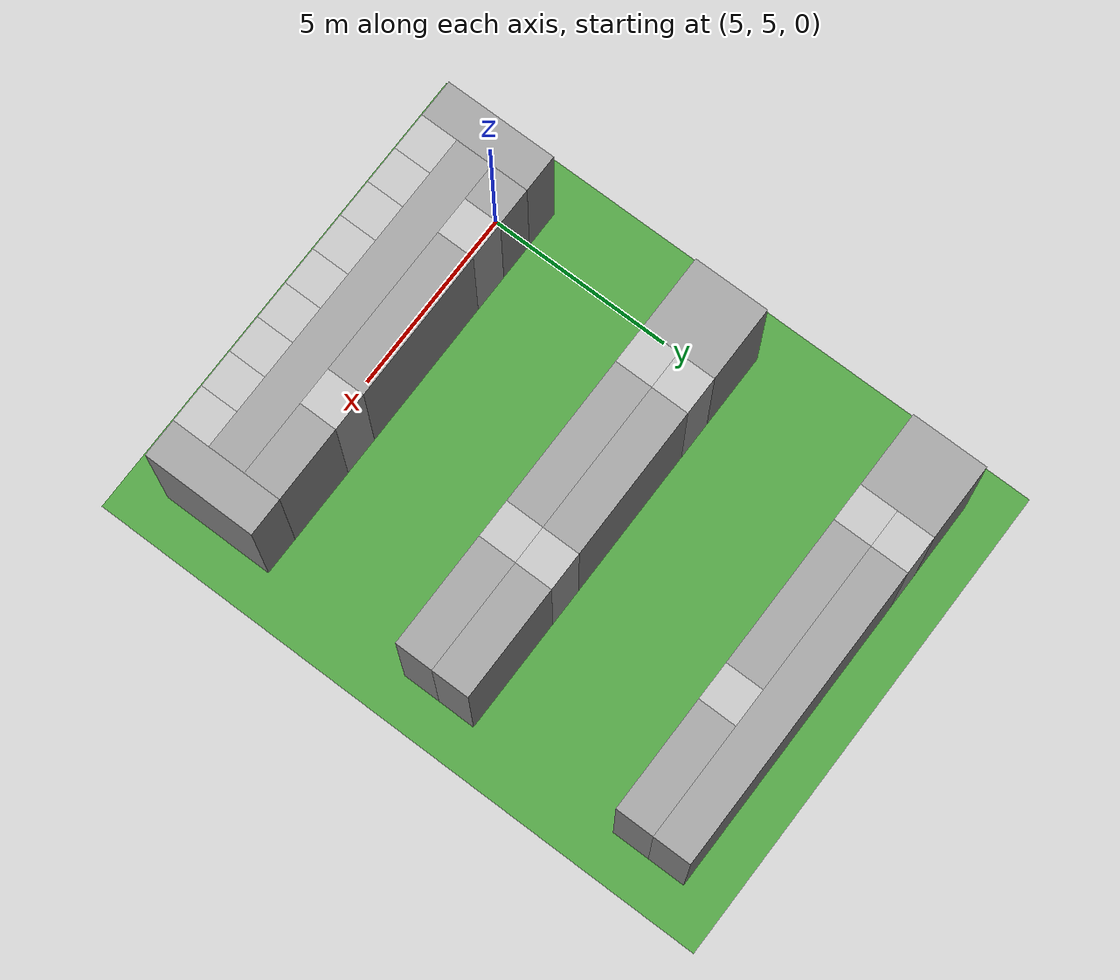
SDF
<sdf version="1.6">
 <world name="default">
  <light name="sun" type="directional">
   <pose>0 0 10 0 -0 0</pose>
   <diffuse>0.8 0.8 0.8 1</diffuse>
   <specular>0.1 0.1 0.1 1</specular>
   <attenuation>
    <range>1000</range>
    <constant>0.9</constant>
    <linear>0.01</linear>
    <quadratic>0.001</quadratic>
   </attenuation>
   <direction>-0.5 0.5 -1</direction>
  </light>
  <model name="ground_plane">
   <static>1</static>
   <link name="link">
    <collision name="collision">
     <geometry><plane><normal>0 0 1</normal><size>100 100</size></plane></geometry>
     <surface><friction><ode><mu>100</mu><mu2>50</mu2></ode></friction></surface>
    </collision>
    <visual name="visual">
     <cast_shadows>0</cast_shadows>
     <geometry><plane><normal>0 0 1</normal><size>100 100</size></plane></geometry>
     <material>
      <script><uri>file://media/materials/scripts/gazebo.material</uri><name>Gazebo/Grass</name></script>
     </material>
    </visual>
   </link>
  </model>
  <gravity>0 0 -9.8</gravity>
  <magnetic_field>6e-06 2.3e-05 -4.2e-05</magnetic_field>
  <atmosphere type="adiabatic"/>
  <physics name="default_physics" default="0" type="ode">
   <max_step_size>0.001</max_step_size>
   <real_time_factor>1</real_time_factor>
   <real_time_update_rate>1000</real_time_update_rate>
  </physics>
  <scene><ambient>0.4 0.4 0.4 1</ambient><background>0.7 0.7 0.7 1</background><shadows>1</shadows></scene>
  <spherical_coordinates>
   <surface_model>EARTH_WGS84</surface_model>
   <latitude_deg>0</latitude_deg>
   <longitude_deg>0</longitude_deg>
   <elevation>0</elevation>
   <heading_deg>0</heading_deg>
  </spherical_coordinates>
  <model name="wall">
   <pose>4.500000 4.500000 2 0 0 0</pose>
   <static>1</static>
   <link name="wall-link">
    <collision name="collision"><geometry><box><size>1 3 4</size></box></geometry></collision>
    <visual name="visual">
     <geometry><box><size>1 3 4</size></box></geometry>
     <material>
      <script><name>Gazebo/Grey</name><uri>file://media/materials/scripts/gazebo.material</uri></script>
     </material>
    </visual>
    <gravity>0</gravity>
   </link>
  </model>
  <model name="wall">
   <pose>14.500000 4.500000 2 0 0 0</pose>
   <static>1</static>
   <link name="wall-link">
    <collision name="collision"><geometry><box><size>1 3 4</size></box></geometry></collision>
    <visual name="visual">
     <geometry><box><size>1 3 4</size></box></geometry>
     <material>
      <script><name>Gazebo/Grey</name><uri>file://media/materials/scripts/gazebo.material</uri></script>
     </material>
    </visual>
    <gravity>0</gravity>
   </link>
  </model>
  <model name="wall">
   <pose>9.500000 4.500000 2 0 0 0</pose>
   <static>1</static>
   <link name="wall-link">
    <collision name="collision"><geometry><box><size>9 1 4</size></box></geometry></collision>
    <visual name="visual">
     <geometry><box><size>9 1 4</size></box></geometry>
     <material>
      <script><name>Gazebo/Grey</name><uri>file://media/materials/scripts/gazebo.material</uri></script>
     </material>
    </visual>
    <gravity>0</gravity>
   </link>
  </model>
  <model name="wall">
   <pose>5.500000 5.500000 2 0 0 0</pose>
   <static>1</static>
   <link name="wall-link">
    <collision name="collision"><geometry><box><size>1 1 4</size></box></geometry></collision>
    <visual name="visual">
     <geometry><box><size>1 1 4</size></box></geometry>
     <material>
      <script><name>Gazebo/Grey</name><uri>file://media/materials/scripts/gazebo.material</uri></script>
     </material>
    </visual>
    <gravity>0</gravity>
   </link>
  </model>
  <model name="wall">
   <pose>9.000000 5.500000 2 0 0 0</pose>
   <static>1</static>
   <link name="wall-link">
    <collision name="collision"><geometry><box><size>4 1 4</size></box></geometry></collision>
    <visual name="visual">
     <geometry><box><size>4 1 4</size></box></geometry>
     <material>
      <script><name>Gazebo/Grey</name><uri>file://media/materials/scripts/gazebo.material</uri></script>
     </material>
    </visual>
    <gravity>0</gravity>
   </link>
  </model>
  <model name="wall">
   <pose>13.000000 5.500000 2 0 0 0</pose>
   <static>1</static>
   <link name="wall-link">
    <collision name="collision"><geometry><box><size>2 1 4</size></box></geometry></collision>
    <visual name="visual">
     <geometry><box><size>2 1 4</size></box></geometry>
     <material>
      <script><name>Gazebo/Grey</name><uri>file://media/materials/scripts/gazebo.material</uri></script>
     </material>
    </visual>
    <gravity>0</gravity>
   </link>
  </model>
  <model name="wall">
   <pose>5.000000 11.000000 2 0 0 0</pose>
   <static>1</static>
   <link name="wall-link">
    <collision name="collision"><geometry><box><size>2 2 4</size></box></geometry></collision>
    <visual name="visual">
     <geometry><box><size>2 2 4</size></box></geometry>
     <material>
      <script><name>Gazebo/Grey</name><uri>file://media/materials/scripts/gazebo.material</uri></script>
     </material>
    </visual>
    <gravity>0</gravity>
   </link>
  </model>
  <model name="wall">
   <pose>9.000000 10.500000 2 0 0 0</pose>
   <static>1</static>
   <link name="wall-link">
    <collision name="collision"><geometry><box><size>4 1 4</size></box></geometry></collision>
    <visual name="visual">
     <geometry><box><size>4 1 4</size></box></geometry>
     <material>
      <script><name>Gazebo/Grey</name><uri>file://media/materials/scripts/gazebo.material</uri></script>
     </material>
    </visual>
    <gravity>0</gravity>
   </link>
  </model>
  <model name="wall">
   <pose>13.500000 10.500000 2 0 0 0</pose>
   <static>1</static>
   <link name="wall-link">
    <collision name="collision"><geometry><box><size>3 1 4</size></box></geometry></collision>
    <visual name="visual">
     <geometry><box><size>3 1 4</size></box></geometry>
     <material>
      <script><name>Gazebo/Grey</name><uri>file://media/materials/scripts/gazebo.material</uri></script>
     </material>
    </visual>
    <gravity>0</gravity>
   </link>
  </model>
  <model name="wall">
   <pose>9.000000 11.500000 2 0 0 0</pose>
   <static>1</static>
   <link name="wall-link">
    <collision name="collision"><geometry><box><size>4 1 4</size></box></geometry></collision>
    <visual name="visual">
     <geometry><box><size>4 1 4</size></box></geometry>
     <material>
      <script><name>Gazebo/Grey</name><uri>file://media/materials/scripts/gazebo.material</uri></script>
     </material>
    </visual>
    <gravity>0</gravity>
   </link>
  </model>
  <model name="wall">
   <pose>13.500000 11.500000 2 0 0 0</pose>
   <static>1</static>
   <link name="wall-link">
    <collision name="collision"><geometry><box><size>3 1 4</size></box></geometry></collision>
    <visual name="visual">
     <geometry><box><size>3 1 4</size></box></geometry>
     <material>
      <script><name>Gazebo/Grey</name><uri>file://media/materials/scripts/gazebo.material</uri></script>
     </material>
    </visual>
    <gravity>0</gravity>
   </link>
  </model>
  <model name="wall">
   <pose>5.000000 17.000000 2 0 0 0</pose>
   <static>1</static>
   <link name="wall-link">
    <collision name="collision"><geometry><box><size>2 2 4</size></box></geometry></collision>
    <visual name="visual">
     <geometry><box><size>2 2 4</size></box></geometry>
     <material>
      <script><name>Gazebo/Grey</name><uri>file://media/materials/scripts/gazebo.material</uri></script>
     </material>
    </visual>
    <gravity>0</gravity>
   </link>
  </model>
  <model name="wall">
   <pose>9.000000 16.500000 2 0 0 0</pose>
   <static>1</static>
   <link name="wall-link">
    <collision name="collision"><geometry><box><size>4 1 4</size></box></geometry></collision>
    <visual name="visual">
     <geometry><box><size>4 1 4</size></box></geometry>
     <material>
      <script><name>Gazebo/Grey</name><uri>file://media/materials/scripts/gazebo.material</uri></script>
     </material>
    </visual>
    <gravity>0</gravity>
   </link>
  </model>
  <model name="wall">
   <pose>13.500000 16.500000 2 0 0 0</pose>
   <static>1</static>
   <link name="wall-link">
    <collision name="collision"><geometry><box><size>3 1 4</size></box></geometry></collision>
    <visual name="visual">
     <geometry><box><size>3 1 4</size></box></geometry>
     <material>
      <script><name>Gazebo/Grey</name><uri>file://media/materials/scripts/gazebo.material</uri></script>
     </material>
    </visual>
    <gravity>0</gravity>
   </link>
  </model>
  <model name="wall">
   <pose>11.000000 17.500000 2 0 0 0</pose>
   <static>1</static>
   <link name="wall-link">
    <collision name="collision"><geometry><box><size>8 1 4</size></box></geometry></collision>
    <visual name="visual">
     <geometry><box><size>8 1 4</size></box></geometry>
     <material>
      <script><name>Gazebo/Grey</name><uri>file://media/materials/scripts/gazebo.material</uri></script>
     </material>
    </visual>
    <gravity>0</gravity>
   </link>
  </model>
  <include><uri>model://numberbox1</uri><pose>5.5 3.5 2 0 -0 0</pose></include>
  <include><uri>model://numberbox2</uri><pose>6.5 3.5 2 0 -0 0</pose></include>
  <include><uri>model://numberbox3</uri><pose>7.5 3.5 2 0 -0 0</pose></include>
  <include><uri>model://numberbox4</uri><pose>8.5 3.5 2 0 -0 0</pose></include>
  <include><uri>model://numberbox5</uri><pose>9.5 3.5 2 0 -0 0</pose></include>
  <include><uri>model://numberbox6</uri><pose>10.5 3.5 2 0 -0 0</pose></include>
  <include><uri>model://numberbox7</uri><pose>11.5 3.5 2 0 -0 0</pose></include>
  <include><uri>model://numberbox8</uri><pose>12.5 3.5 2 0 -0 0</pose></include>
  <include><uri>model://numberbox9</uri><pose>13.5 3.5 2 0 -0 0</pose></include>
  <include><uri>model://numberbox1</uri><pose>6.5 5.5 2 0 -0 0</pose></include>
  <include><uri>model://numberbox2</uri><pose>11.5 5.5 2 0 -0 0</pose></include>
  <include><uri>model://numberbox3</uri><pose>6.5 10.5 2 0 -0 0</pose></include>
  <include><uri>model://numberbox4</uri><pose>11.5 10.5 2 0 -0 0</pose></include>
  <include><uri>model://numberbox5</uri><pose>6.5 11.5 2 0 -0 0</pose></include>
  <include><uri>model://numberbox6</uri><pose>11.5 11.5 2 0 -0 0</pose></include>
  <include><uri>model://numberbox7</uri><pose>6.5 16.5 2 0 -0 0</pose></include>
  <include><uri>model://numberbox8</uri><pose>11.5 16.5 2 0 -0 0</pose></include>
  <include><uri>model://numberbox9</uri><pose>6.5 17.5 2 0 -0 0</pose></include>
 </world>
</sdf>

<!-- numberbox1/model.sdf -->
<sdf version="1.5">
  <model name="box">
    <static>false</static>
    <link name="base">
      <inertial>
        <mass>1</mass>
        <inertia>
          <ixx>0.166667</ixx>
          <ixy>0</ixy>
          <ixz>0</ixz>
          <iyy>0.166667</iyy>
          <iyz>0</iyz>
          <izz>0.166667</izz>
        </inertia>
      </inertial>
      <collision name="collision">
        <geometry>
            <box>
                <size>1 1 4</size>
            </box>
        </geometry>
      </collision>
      <visual name="visual">
        <geometry>
          <mesh>
            <uri>model://numberbox/meshes/number1.dae</uri>
          </mesh>
        </geometry>
      </visual>
    </link>
  </model>
</sdf>

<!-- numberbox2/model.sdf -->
<sdf version="1.5">
  <model name="box">
    <static>false</static>
    <link name="base">
      <inertial>
        <mass>1</mass>
        <inertia>
          <ixx>0.166667</ixx>
          <ixy>0</ixy>
          <ixz>0</ixz>
          <iyy>0.166667</iyy>
          <iyz>0</iyz>
          <izz>0.166667</izz>
        </inertia>
      </inertial>
      <collision name="collision">
        <geometry>
            <box>
                <size>1 1 4</size>
            </box>
        </geometry>
      </collision>
      <visual name="visual">
        <geometry>
          <mesh>
            <uri>model://numberbox/meshes/number2.dae</uri>
          </mesh>
        </geometry>
      </visual>
    </link>
  </model>
</sdf>

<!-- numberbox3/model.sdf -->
<sdf version="1.5">
  <model name="box">
    <static>false</static>
    <link name="base">
      <inertial>
        <mass>1</mass>
        <inertia>
          <ixx>0.166667</ixx>
          <ixy>0</ixy>
          <ixz>0</ixz>
          <iyy>0.166667</iyy>
          <iyz>0</iyz>
          <izz>0.166667</izz>
        </inertia>
      </inertial>
      <collision name="collision">
        <geometry>
            <box>
                <size>1 1 4</size>
            </box>
        </geometry>
      </collision>
      <visual name="visual">
        <geometry>
          <mesh>
            <uri>model://numberbox/meshes/number3.dae</uri>
          </mesh>
        </geometry>
      </visual>
    </link>
  </model>
</sdf>

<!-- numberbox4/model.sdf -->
<sdf version="1.5">
  <model name="box">
    <static>false</static>
    <link name="base">
      <inertial>
        <mass>1</mass>
        <inertia>
          <ixx>0.166667</ixx>
          <ixy>0</ixy>
          <ixz>0</ixz>
          <iyy>0.166667</iyy>
          <iyz>0</iyz>
          <izz>0.166667</izz>
        </inertia>
      </inertial>
      <collision name="collision">
        <geometry>
            <box>
                <size>1 1 4</size>
            </box>
        </geometry>
      </collision>
      <visual name="visual">
        <geometry>
          <mesh>
            <uri>model://numberbox/meshes/number4.dae</uri>
          </mesh>
        </geometry>
      </visual>
    </link>
  </model>
</sdf>

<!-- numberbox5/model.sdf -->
<sdf version="1.5">
  <model name="box">
    <static>false</static>
    <link name="base">
      <inertial>
        <mass>1</mass>
        <inertia>
          <ixx>0.166667</ixx>
          <ixy>0</ixy>
          <ixz>0</ixz>
          <iyy>0.166667</iyy>
          <iyz>0</iyz>
          <izz>0.166667</izz>
        </inertia>
      </inertial>
      <collision name="collision">
        <geometry>
            <box>
                <size>1 1 4</size>
            </box>
        </geometry>
      </collision>
      <visual name="visual">
        <geometry>
          <mesh>
            <uri>model://numberbox/meshes/number5.dae</uri>
          </mesh>
        </geometry>
      </visual>
    </link>
  </model>
</sdf>

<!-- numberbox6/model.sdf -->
<sdf version="1.5">
  <model name="box">
    <static>false</static>
    <link name="base">
      <inertial>
        <mass>1</mass>
        <inertia>
          <ixx>0.166667</ixx>
          <ixy>0</ixy>
          <ixz>0</ixz>
          <iyy>0.166667</iyy>
          <iyz>0</iyz>
          <izz>0.166667</izz>
        </inertia>
      </inertial>
      <collision name="collision">
        <geometry>
            <box>
                <size>1 1 4</size>
            </box>
        </geometry>
      </collision>
      <visual name="visual">
        <geometry>
          <mesh>
            <uri>model://numberbox/meshes/number6.dae</uri>
          </mesh>
        </geometry>
      </visual>
    </link>
  </model>
</sdf>

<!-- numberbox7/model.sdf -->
<sdf version="1.5">
  <model name="box">
    <static>false</static>
    <link name="base">
      <inertial>
        <mass>1</mass>
        <inertia>
          <ixx>0.166667</ixx>
          <ixy>0</ixy>
          <ixz>0</ixz>
          <iyy>0.166667</iyy>
          <iyz>0</iyz>
          <izz>0.166667</izz>
        </inertia>
      </inertial>
      <collision name="collision">
        <geometry>
            <box>
                <size>1 1 4</size>
            </box>
        </geometry>
      </collision>
      <visual name="visual">
        <geometry>
          <mesh>
            <uri>model://numberbox/meshes/number7.dae</uri>
          </mesh>
        </geometry>
      </visual>
    </link>
  </model>
</sdf>

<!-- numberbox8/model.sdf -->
<sdf version="1.5">
  <model name="box">
    <static>false</static>
    <link name="base">
      <inertial>
        <mass>1</mass>
        <inertia>
          <ixx>0.166667</ixx>
          <ixy>0</ixy>
          <ixz>0</ixz>
          <iyy>0.166667</iyy>
          <iyz>0</iyz>
          <izz>0.166667</izz>
        </inertia>
      </inertial>
      <collision name="collision">
        <geometry>
            <box>
                <size>1 1 4</size>
            </box>
        </geometry>
      </collision>
      <visual name="visual">
        <geometry>
          <mesh>
            <uri>model://numberbox/meshes/number8.dae</uri>
          </mesh>
        </geometry>
      </visual>
    </link>
  </model>
</sdf>

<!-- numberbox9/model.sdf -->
<sdf version="1.5">
  <model name="box">
    <static>false</static>
    <link name="base">
      <inertial>
        <mass>1</mass>
        <inertia>
          <ixx>0.166667</ixx>
          <ixy>0</ixy>
          <ixz>0</ixz>
          <iyy>0.166667</iyy>
          <iyz>0</iyz>
          <izz>0.166667</izz>
        </inertia>
      </inertial>
      <collision name="collision">
        <geometry>
            <box>
                <size>1 1 4</size>
            </box>
        </geometry>
      </collision>
      <visual name="visual">
        <geometry>
          <mesh>
            <uri>model://numberbox/meshes/number9.dae</uri>
          </mesh>
        </geometry>
      </visual>
    </link>
  </model>
</sdf>
